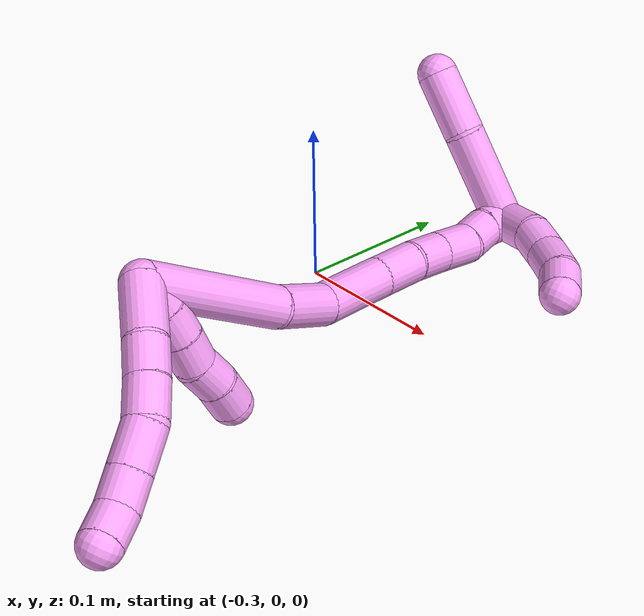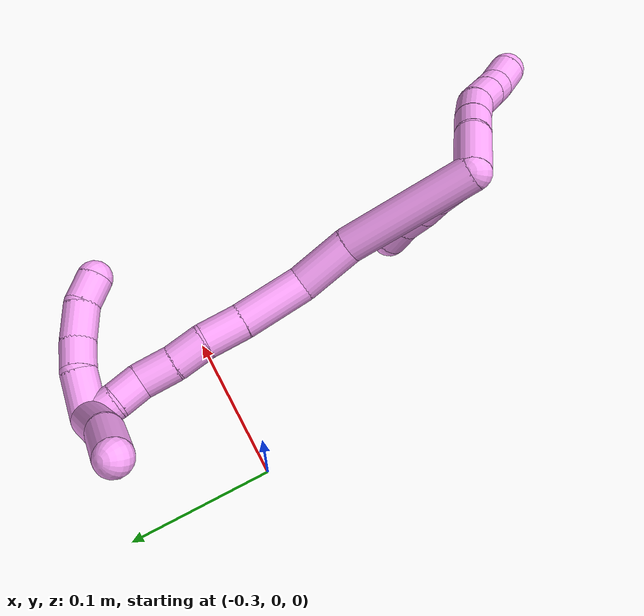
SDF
<sdf version="1.7">
 <world name="default">
  <model name="4">
   <static>0</static>
   <link name="4">
    <collision name="collision-cylinder-e_1_2_8">
     <pose>-0.011294 -0.007604 0.012873 0.533528 -0.646955 -0.182724</pose>
     <geometry><cylinder><radius>0.0125</radius><length>0.037475</length></cylinder></geometry>
     <surface>
      <friction><ode><mu>1.16</mu><mu2>1.16</mu2><slip1>0</slip1><slip2>0</slip2></ode></friction>
      <contact><ode><kp>1e+06</kp><kd>1</kd><max_vel>0</max_vel><min_depth>0.001</min_depth></ode></contact>
     </surface>
    </collision>
    <visual name="visual-cylinder-e_1_2_8">
     <pose>-0.011294 -0.007604 0.012873 0.533528 -0.646955 -0.182724</pose>
     <geometry><cylinder><radius>0.0125</radius><length>0.037475</length></cylinder></geometry>
     <material><ambient>1 0.65098 0.996078 1</ambient></material>
    </visual>
    <collision name="collision-cylinder-e_2_8_9">
     <pose>-0.028753 -0.01819 0.034156 0.340768 -0.604575 -0.107204</pose>
     <geometry><cylinder><radius>0.0125</radius><length>0.02169</length></cylinder></geometry>
     <surface>
      <friction><ode><mu>1.16</mu><mu2>1.16</mu2><slip1>0</slip1><slip2>0</slip2></ode></friction>
      <contact><ode><kp>1e+06</kp><kd>1</kd><max_vel>0</max_vel><min_depth>0.001</min_depth></ode></contact>
     </surface>
    </collision>
    <visual name="visual-cylinder-e_2_8_9">
     <pose>-0.028753 -0.01819 0.034156 0.340768 -0.604575 -0.107204</pose>
     <geometry><cylinder><radius>0.0125</radius><length>0.02169</length></cylinder></geometry>
     <material><ambient>1 0.65098 0.996078 1</ambient></material>
    </visual>
    <collision name="collision-cylinder-e_3_9_10">
     <pose>-0.04091 -0.024404 0.052118 0.326267 -0.536186 -0.09037</pose>
     <geometry><cylinder><radius>0.0125</radius><length>0.023463</length></cylinder></geometry>
     <surface>
      <friction><ode><mu>1.16</mu><mu2>1.16</mu2><slip1>0</slip1><slip2>0</slip2></ode></friction>
      <contact><ode><kp>1e+06</kp><kd>1</kd><max_vel>0</max_vel><min_depth>0.001</min_depth></ode></contact>
     </surface>
    </collision>
    <visual name="visual-cylinder-e_3_9_10">
     <pose>-0.04091 -0.024404 0.052118 0.326267 -0.536186 -0.09037</pose>
     <geometry><cylinder><radius>0.0125</radius><length>0.023463</length></cylinder></geometry>
     <material><ambient>1 0.65098 0.996078 1</ambient></material>
    </visual>
    <collision name="collision-cylinder-e_4_10_11">
     <pose>-0.050103 -0.031087 0.073909 0.274849 -0.246522 -0.034263</pose>
     <geometry><cylinder><radius>0.0125</radius><length>0.026221</length></cylinder></geometry>
     <surface>
      <friction><ode><mu>1.16</mu><mu2>1.16</mu2><slip1>0</slip1><slip2>0</slip2></ode></friction>
      <contact><ode><kp>1e+06</kp><kd>1</kd><max_vel>0</max_vel><min_depth>0.001</min_depth></ode></contact>
     </surface>
    </collision>
    <visual name="visual-cylinder-e_4_10_11">
     <pose>-0.050103 -0.031087 0.073909 0.274849 -0.246522 -0.034263</pose>
     <geometry><cylinder><radius>0.0125</radius><length>0.026221</length></cylinder></geometry>
     <material><ambient>1 0.65098 0.996078 1</ambient></material>
    </visual>
    <collision name="collision-cylinder-e_5_11_12">
     <pose>-0.05581 -0.037244 0.095742 0.274896 -0.246418 -0.034255</pose>
     <geometry><cylinder><radius>0.0125</radius><length>0.020563</length></cylinder></geometry>
     <surface>
      <friction><ode><mu>1.16</mu><mu2>1.16</mu2><slip1>0</slip1><slip2>0</slip2></ode></friction>
      <contact><ode><kp>1e+06</kp><kd>1</kd><max_vel>0</max_vel><min_depth>0.001</min_depth></ode></contact>
     </surface>
    </collision>
    <visual name="visual-cylinder-e_5_11_12">
     <pose>-0.05581 -0.037244 0.095742 0.274896 -0.246418 -0.034255</pose>
     <geometry><cylinder><radius>0.0125</radius><length>0.020563</length></cylinder></geometry>
     <material><ambient>1 0.65098 0.996078 1</ambient></material>
    </visual>
    <collision name="collision-cylinder-e_6_12_6">
     <pose>-0.060555 -0.045869 0.113459 0.629794 -0.218996 -0.071591</pose>
     <geometry><cylinder><radius>0.0125</radius><length>0.020588</length></cylinder></geometry>
     <surface>
      <friction><ode><mu>1.16</mu><mu2>1.16</mu2><slip1>0</slip1><slip2>0</slip2></ode></friction>
      <contact><ode><kp>1e+06</kp><kd>1</kd><max_vel>0</max_vel><min_depth>0.001</min_depth></ode></contact>
     </surface>
    </collision>
    <visual name="visual-cylinder-e_6_12_6">
     <pose>-0.060555 -0.045869 0.113459 0.629794 -0.218996 -0.071591</pose>
     <geometry><cylinder><radius>0.0125</radius><length>0.020588</length></cylinder></geometry>
     <material><ambient>1 0.65098 0.996078 1</ambient></material>
    </visual>
    <collision name="collision-cylinder-e_1_2_13">
     <pose>-0.005333 0.007639 0.003633 -1.12685 -0.562517 0.361064</pose>
     <geometry><cylinder><radius>0.0125</radius><length>0.02</length></cylinder></geometry>
     <surface>
      <friction><ode><mu>1.16</mu><mu2>1.16</mu2><slip1>0</slip1><slip2>0</slip2></ode></friction>
      <contact><ode><kp>1e+06</kp><kd>1</kd><max_vel>0</max_vel><min_depth>0.001</min_depth></ode></contact>
     </surface>
    </collision>
    <visual name="visual-cylinder-e_1_2_13">
     <pose>-0.005333 0.007639 0.003633 -1.12685 -0.562517 0.361064</pose>
     <geometry><cylinder><radius>0.0125</radius><length>0.02</length></cylinder></geometry>
     <material><ambient>1 0.65098 0.996078 1</ambient></material>
    </visual>
    <collision name="collision-cylinder-e_2_13_14">
     <pose>-0.015463 0.022686 0.01197 -1.00504 -0.500272 0.278997</pose>
     <geometry><cylinder><radius>0.0125</radius><length>0.02</length></cylinder></geometry>
     <surface>
      <friction><ode><mu>1.16</mu><mu2>1.16</mu2><slip1>0</slip1><slip2>0</slip2></ode></friction>
      <contact><ode><kp>1e+06</kp><kd>1</kd><max_vel>0</max_vel><min_depth>0.001</min_depth></ode></contact>
     </surface>
    </collision>
    <visual name="visual-cylinder-e_2_13_14">
     <pose>-0.015463 0.022686 0.01197 -1.00504 -0.500272 0.278997</pose>
     <geometry><cylinder><radius>0.0125</radius><length>0.02</length></cylinder></geometry>
     <material><ambient>1 0.65098 0.996078 1</ambient></material>
    </visual>
    <collision name="collision-cylinder-e_3_14_15">
     <pose>-0.024437 0.037744 0.021573 -1.00125 -0.430996 0.238389</pose>
     <geometry><cylinder><radius>0.0125</radius><length>0.02</length></cylinder></geometry>
     <surface>
      <friction><ode><mu>1.16</mu><mu2>1.16</mu2><slip1>0</slip1><slip2>0</slip2></ode></friction>
      <contact><ode><kp>1e+06</kp><kd>1</kd><max_vel>0</max_vel><min_depth>0.001</min_depth></ode></contact>
     </surface>
    </collision>
    <visual name="visual-cylinder-e_3_14_15">
     <pose>-0.024437 0.037744 0.021573 -1.00125 -0.430996 0.238389</pose>
     <geometry><cylinder><radius>0.0125</radius><length>0.02</length></cylinder></geometry>
     <material><ambient>1 0.65098 0.996078 1</ambient></material>
    </visual>
    <collision name="collision-cylinder-e_4_15_16">
     <pose>-0.033467 0.053803 0.028875 -1.29245 -0.506588 0.385635</pose>
     <geometry><cylinder><radius>0.0125</radius><length>0.02</length></cylinder></geometry>
     <surface>
      <friction><ode><mu>1.16</mu><mu2>1.16</mu2><slip1>0</slip1><slip2>0</slip2></ode></friction>
      <contact><ode><kp>1e+06</kp><kd>1</kd><max_vel>0</max_vel><min_depth>0.001</min_depth></ode></contact>
     </surface>
    </collision>
    <visual name="visual-cylinder-e_4_15_16">
     <pose>-0.033467 0.053803 0.028875 -1.29245 -0.506588 0.385635</pose>
     <geometry><cylinder><radius>0.0125</radius><length>0.02</length></cylinder></geometry>
     <material><ambient>1 0.65098 0.996078 1</ambient></material>
    </visual>
    <collision name="collision-cylinder-e_5_16_5">
     <pose>-0.041873 0.070882 0.034766 -1.18829 -0.363281 0.246896</pose>
     <geometry><cylinder><radius>0.0125</radius><length>0.02</length></cylinder></geometry>
     <surface>
      <friction><ode><mu>1.16</mu><mu2>1.16</mu2><slip1>0</slip1><slip2>0</slip2></ode></friction>
      <contact><ode><kp>1e+06</kp><kd>1</kd><max_vel>0</max_vel><min_depth>0.001</min_depth></ode></contact>
     </surface>
    </collision>
    <visual name="visual-cylinder-e_5_16_5">
     <pose>-0.041873 0.070882 0.034766 -1.18829 -0.363281 0.246896</pose>
     <geometry><cylinder><radius>0.0125</radius><length>0.02</length></cylinder></geometry>
     <material><ambient>1 0.65098 0.996078 1</ambient></material>
    </visual>
    <collision name="collision-cylinder-e_1_2_17">
     <pose>-0.022107 0.040545 -0.010052 -1.81381 -0.48676 0.61464</pose>
     <geometry><cylinder><radius>0.0125</radius><length>0.094523</length></cylinder></geometry>
     <surface>
      <friction><ode><mu>1.16</mu><mu2>1.16</mu2><slip1>0</slip1><slip2>0</slip2></ode></friction>
      <contact><ode><kp>1e+06</kp><kd>1</kd><max_vel>0</max_vel><min_depth>0.001</min_depth></ode></contact>
     </surface>
    </collision>
    <visual name="visual-cylinder-e_1_2_17">
     <pose>-0.022107 0.040545 -0.010052 -1.81381 -0.48676 0.61464</pose>
     <geometry><cylinder><radius>0.0125</radius><length>0.094523</length></cylinder></geometry>
     <material><ambient>1 0.65098 0.996078 1</ambient></material>
    </visual>
    <collision name="collision-cylinder-e_2_17_18">
     <pose>-0.049775 0.099453 -0.026644 -1.91298 -0.277847 0.391393</pose>
     <geometry><cylinder><radius>0.0125</radius><length>0.040541</length></cylinder></geometry>
     <surface>
      <friction><ode><mu>1.16</mu><mu2>1.16</mu2><slip1>0</slip1><slip2>0</slip2></ode></friction>
      <contact><ode><kp>1e+06</kp><kd>1</kd><max_vel>0</max_vel><min_depth>0.001</min_depth></ode></contact>
     </surface>
    </collision>
    <visual name="visual-cylinder-e_2_17_18">
     <pose>-0.049775 0.099453 -0.026644 -1.91298 -0.277847 0.391393</pose>
     <geometry><cylinder><radius>0.0125</radius><length>0.040541</length></cylinder></geometry>
     <material><ambient>1 0.65098 0.996078 1</ambient></material>
    </visual>
    <collision name="collision-cylinder-e_3_18_19">
     <pose>-0.061369 0.135413 -0.047771 -2.26293 -0.258128 0.53889</pose>
     <geometry><cylinder><radius>0.0125</radius><length>0.04728</length></cylinder></geometry>
     <surface>
      <friction><ode><mu>1.16</mu><mu2>1.16</mu2><slip1>0</slip1><slip2>0</slip2></ode></friction>
      <contact><ode><kp>1e+06</kp><kd>1</kd><max_vel>0</max_vel><min_depth>0.001</min_depth></ode></contact>
     </surface>
    </collision>
    <visual name="visual-cylinder-e_3_18_19">
     <pose>-0.061369 0.135413 -0.047771 -2.26293 -0.258128 0.53889</pose>
     <geometry><cylinder><radius>0.0125</radius><length>0.04728</length></cylinder></geometry>
     <material><ambient>1 0.65098 0.996078 1</ambient></material>
    </visual>
    <collision name="collision-cylinder-e_4_19_20">
     <pose>-0.071716 0.162721 -0.071412 -2.32118 -0.31402 0.698254</pose>
     <geometry><cylinder><radius>0.0125</radius><length>0.027918</length></cylinder></geometry>
     <surface>
      <friction><ode><mu>1.16</mu><mu2>1.16</mu2><slip1>0</slip1><slip2>0</slip2></ode></friction>
      <contact><ode><kp>1e+06</kp><kd>1</kd><max_vel>0</max_vel><min_depth>0.001</min_depth></ode></contact>
     </surface>
    </collision>
    <visual name="visual-cylinder-e_4_19_20">
     <pose>-0.071716 0.162721 -0.071412 -2.32118 -0.31402 0.698254</pose>
     <geometry><cylinder><radius>0.0125</radius><length>0.027918</length></cylinder></geometry>
     <material><ambient>1 0.65098 0.996078 1</ambient></material>
    </visual>
    <collision name="collision-cylinder-e_5_20_21">
     <pose>-0.079004 0.182296 -0.086875 -2.14702 -0.247859 0.451183</pose>
     <geometry><cylinder><radius>0.0125</radius><length>0.024269</length></cylinder></geometry>
     <surface>
      <friction><ode><mu>1.16</mu><mu2>1.16</mu2><slip1>0</slip1><slip2>0</slip2></ode></friction>
      <contact><ode><kp>1e+06</kp><kd>1</kd><max_vel>0</max_vel><min_depth>0.001</min_depth></ode></contact>
     </surface>
    </collision>
    <visual name="visual-cylinder-e_5_20_21">
     <pose>-0.079004 0.182296 -0.086875 -2.14702 -0.247859 0.451183</pose>
     <geometry><cylinder><radius>0.0125</radius><length>0.024269</length></cylinder></geometry>
     <material><ambient>1 0.65098 0.996078 1</ambient></material>
    </visual>
    <collision name="collision-cylinder-e_6_21_22">
     <pose>-0.086434 0.201578 -0.100432 -2.21998 -0.360201 0.703036</pose>
     <geometry><cylinder><radius>0.0125</radius><length>0.025267</length></cylinder></geometry>
     <surface>
      <friction><ode><mu>1.16</mu><mu2>1.16</mu2><slip1>0</slip1><slip2>0</slip2></ode></friction>
      <contact><ode><kp>1e+06</kp><kd>1</kd><max_vel>0</max_vel><min_depth>0.001</min_depth></ode></contact>
     </surface>
    </collision>
    <visual name="visual-cylinder-e_6_21_22">
     <pose>-0.086434 0.201578 -0.100432 -2.21998 -0.360201 0.703036</pose>
     <geometry><cylinder><radius>0.0125</radius><length>0.025267</length></cylinder></geometry>
     <material><ambient>1 0.65098 0.996078 1</ambient></material>
    </visual>
    <collision name="collision-cylinder-e_7_22_23">
     <pose>-0.091745 0.218197 -0.114565 -2.34107 -0.085359 0.201187</pose>
     <geometry><cylinder><radius>0.0125</radius><length>0.02014</length></cylinder></geometry>
     <surface>
      <friction><ode><mu>1.16</mu><mu2>1.16</mu2><slip1>0</slip1><slip2>0</slip2></ode></friction>
      <contact><ode><kp>1e+06</kp><kd>1</kd><max_vel>0</max_vel><min_depth>0.001</min_depth></ode></contact>
     </surface>
    </collision>
    <visual name="visual-cylinder-e_7_22_23">
     <pose>-0.091745 0.218197 -0.114565 -2.34107 -0.085359 0.201187</pose>
     <geometry><cylinder><radius>0.0125</radius><length>0.02014</length></cylinder></geometry>
     <material><ambient>1 0.65098 0.996078 1</ambient></material>
    </visual>
    <collision name="collision-cylinder-e_8_23_1">
     <pose>-0.095061 0.233112 -0.127474 -2.22559 -0.247449 0.494227</pose>
     <geometry><cylinder><radius>0.0125</radius><length>0.020061</length></cylinder></geometry>
     <surface>
      <friction><ode><mu>1.16</mu><mu2>1.16</mu2><slip1>0</slip1><slip2>0</slip2></ode></friction>
      <contact><ode><kp>1e+06</kp><kd>1</kd><max_vel>0</max_vel><min_depth>0.001</min_depth></ode></contact>
     </surface>
    </collision>
    <visual name="visual-cylinder-e_8_23_1">
     <pose>-0.095061 0.233112 -0.127474 -2.22559 -0.247449 0.494227</pose>
     <geometry><cylinder><radius>0.0125</radius><length>0.020061</length></cylinder></geometry>
     <material><ambient>1 0.65098 0.996078 1</ambient></material>
    </visual>
    <collision name="collision-cylinder-e_1_1_24">
     <pose>-0.077979 0.226769 -0.151397 2.47858 0.707691 1.64134</pose>
     <geometry><cylinder><radius>0.0125</radius><length>0.060111</length></cylinder></geometry>
     <surface>
      <friction><ode><mu>1.16</mu><mu2>1.16</mu2><slip1>0</slip1><slip2>0</slip2></ode></friction>
      <contact><ode><kp>1e+06</kp><kd>1</kd><max_vel>0</max_vel><min_depth>0.001</min_depth></ode></contact>
     </surface>
    </collision>
    <visual name="visual-cylinder-e_1_1_24">
     <pose>-0.077979 0.226769 -0.151397 2.47858 0.707691 1.64134</pose>
     <geometry><cylinder><radius>0.0125</radius><length>0.060111</length></cylinder></geometry>
     <material><ambient>1 0.65098 0.996078 1</ambient></material>
    </visual>
    <collision name="collision-cylinder-e_2_24_4">
     <pose>-0.044036 0.207324 -0.182095 2.74034 0.807007 2.25252</pose>
     <geometry><cylinder><radius>0.0125</radius><length>0.039889</length></cylinder></geometry>
     <surface>
      <friction><ode><mu>1.16</mu><mu2>1.16</mu2><slip1>0</slip1><slip2>0</slip2></ode></friction>
      <contact><ode><kp>1e+06</kp><kd>1</kd><max_vel>0</max_vel><min_depth>0.001</min_depth></ode></contact>
     </surface>
    </collision>
    <visual name="visual-cylinder-e_2_24_4">
     <pose>-0.044036 0.207324 -0.182095 2.74034 0.807007 2.25252</pose>
     <geometry><cylinder><radius>0.0125</radius><length>0.039889</length></cylinder></geometry>
     <material><ambient>1 0.65098 0.996078 1</ambient></material>
    </visual>
    <collision name="collision-cylinder-e_1_1_25">
     <pose>-0.110289 0.23133 -0.131827 1.40695 -0.924985 -0.800177</pose>
     <geometry><cylinder><radius>0.0125</radius><length>0.031984</length></cylinder></geometry>
     <surface>
      <friction><ode><mu>1.16</mu><mu2>1.16</mu2><slip1>0</slip1><slip2>0</slip2></ode></friction>
      <contact><ode><kp>1e+06</kp><kd>1</kd><max_vel>0</max_vel><min_depth>0.001</min_depth></ode></contact>
     </surface>
    </collision>
    <visual name="visual-cylinder-e_1_1_25">
     <pose>-0.110289 0.23133 -0.131827 1.40695 -0.924985 -0.800177</pose>
     <geometry><cylinder><radius>0.0125</radius><length>0.031984</length></cylinder></geometry>
     <material><ambient>1 0.65098 0.996078 1</ambient></material>
    </visual>
    <collision name="collision-cylinder-e_2_25_26">
     <pose>-0.131096 0.216511 -0.126004 0.89668 -0.867492 -0.438412</pose>
     <geometry><cylinder><radius>0.0125</radius><length>0.021071</length></cylinder></geometry>
     <surface>
      <friction><ode><mu>1.16</mu><mu2>1.16</mu2><slip1>0</slip1><slip2>0</slip2></ode></friction>
      <contact><ode><kp>1e+06</kp><kd>1</kd><max_vel>0</max_vel><min_depth>0.001</min_depth></ode></contact>
     </surface>
    </collision>
    <visual name="visual-cylinder-e_2_25_26">
     <pose>-0.131096 0.216511 -0.126004 0.89668 -0.867492 -0.438412</pose>
     <geometry><cylinder><radius>0.0125</radius><length>0.021071</length></cylinder></geometry>
     <material><ambient>1 0.65098 0.996078 1</ambient></material>
    </visual>
    <collision name="collision-cylinder-e_3_26_27">
     <pose>-0.147345 0.202183 -0.117019 1.08696 -0.679298 -0.420644</pose>
     <geometry><cylinder><radius>0.0125</radius><length>0.026149</length></cylinder></geometry>
     <surface>
      <friction><ode><mu>1.16</mu><mu2>1.16</mu2><slip1>0</slip1><slip2>0</slip2></ode></friction>
      <contact><ode><kp>1e+06</kp><kd>1</kd><max_vel>0</max_vel><min_depth>0.001</min_depth></ode></contact>
     </surface>
    </collision>
    <visual name="visual-cylinder-e_3_26_27">
     <pose>-0.147345 0.202183 -0.117019 1.08696 -0.679298 -0.420644</pose>
     <geometry><cylinder><radius>0.0125</radius><length>0.026149</length></cylinder></geometry>
     <material><ambient>1 0.65098 0.996078 1</ambient></material>
    </visual>
    <collision name="collision-cylinder-e_4_27_3">
     <pose>-0.159738 0.185885 -0.106166 0.872538 -0.413578 -0.194999</pose>
     <geometry><cylinder><radius>0.0125</radius><length>0.020796</length></cylinder></geometry>
     <surface>
      <friction><ode><mu>1.16</mu><mu2>1.16</mu2><slip1>0</slip1><slip2>0</slip2></ode></friction>
      <contact><ode><kp>1e+06</kp><kd>1</kd><max_vel>0</max_vel><min_depth>0.001</min_depth></ode></contact>
     </surface>
    </collision>
    <visual name="visual-cylinder-e_4_27_3">
     <pose>-0.159738 0.185885 -0.106166 0.872538 -0.413578 -0.194999</pose>
     <geometry><cylinder><radius>0.0125</radius><length>0.020796</length></cylinder></geometry>
     <material><ambient>1 0.65098 0.996078 1</ambient></material>
    </visual>
    <collision name="collision-sphere-3">
     <pose>-0.163917 0.178592 -0.100045 0 -0 0</pose>
     <geometry><sphere><radius>0.0125</radius></sphere></geometry>
     <surface>
      <friction><ode><mu>1.16</mu><mu2>1.16</mu2><slip1>0</slip1><slip2>0</slip2></ode></friction>
      <contact><ode><kp>1e+06</kp><kd>1</kd><max_vel>0</max_vel><min_depth>0.001</min_depth></ode></contact>
     </surface>
    </collision>
    <visual name="visual-sphere-3">
     <pose>-0.163917 0.178592 -0.100045 0 -0 0</pose>
     <geometry><sphere><radius>0.0125</radius></sphere></geometry>
     <material><ambient>1 0.65098 0.996078 1</ambient></material>
    </visual>
    <collision name="collision-sphere-27">
     <pose>-0.155559 0.193178 -0.112287 0 -0 0</pose>
     <geometry><sphere><radius>0.0125</radius></sphere></geometry>
     <surface>
      <friction><ode><mu>1.16</mu><mu2>1.16</mu2><slip1>0</slip1><slip2>0</slip2></ode></friction>
      <contact><ode><kp>1e+06</kp><kd>1</kd><max_vel>0</max_vel><min_depth>0.001</min_depth></ode></contact>
     </surface>
    </collision>
    <visual name="visual-sphere-27">
     <pose>-0.155559 0.193178 -0.112287 0 -0 0</pose>
     <geometry><sphere><radius>0.0125</radius></sphere></geometry>
     <material><ambient>1 0.65098 0.996078 1</ambient></material>
    </visual>
    <collision name="collision-sphere-26">
     <pose>-0.139131 0.211188 -0.121751 0 -0 0</pose>
     <geometry><sphere><radius>0.0125</radius></sphere></geometry>
     <surface>
      <friction><ode><mu>1.16</mu><mu2>1.16</mu2><slip1>0</slip1><slip2>0</slip2></ode></friction>
      <contact><ode><kp>1e+06</kp><kd>1</kd><max_vel>0</max_vel><min_depth>0.001</min_depth></ode></contact>
     </surface>
    </collision>
    <visual name="visual-sphere-26">
     <pose>-0.139131 0.211188 -0.121751 0 -0 0</pose>
     <geometry><sphere><radius>0.0125</radius></sphere></geometry>
     <material><ambient>1 0.65098 0.996078 1</ambient></material>
    </visual>
    <collision name="collision-sphere-25">
     <pose>-0.12306 0.221834 -0.130257 0 -0 0</pose>
     <geometry><sphere><radius>0.0125</radius></sphere></geometry>
     <surface>
      <friction><ode><mu>1.16</mu><mu2>1.16</mu2><slip1>0</slip1><slip2>0</slip2></ode></friction>
      <contact><ode><kp>1e+06</kp><kd>1</kd><max_vel>0</max_vel><min_depth>0.001</min_depth></ode></contact>
     </surface>
    </collision>
    <visual name="visual-sphere-25">
     <pose>-0.12306 0.221834 -0.130257 0 -0 0</pose>
     <geometry><sphere><radius>0.0125</radius></sphere></geometry>
     <material><ambient>1 0.65098 0.996078 1</ambient></material>
    </visual>
    <collision name="collision-sphere-4">
     <pose>-0.029632 0.201936 -0.194795 0 -0 0</pose>
     <geometry><sphere><radius>0.0125</radius></sphere></geometry>
     <surface>
      <friction><ode><mu>1.16</mu><mu2>1.16</mu2><slip1>0</slip1><slip2>0</slip2></ode></friction>
      <contact><ode><kp>1e+06</kp><kd>1</kd><max_vel>0</max_vel><min_depth>0.001</min_depth></ode></contact>
     </surface>
    </collision>
    <visual name="visual-sphere-4">
     <pose>-0.029632 0.201936 -0.194795 0 -0 0</pose>
     <geometry><sphere><radius>0.0125</radius></sphere></geometry>
     <material><ambient>1 0.65098 0.996078 1</ambient></material>
    </visual>
    <collision name="collision-sphere-24">
     <pose>-0.058441 0.212712 -0.169396 0 -0 0</pose>
     <geometry><sphere><radius>0.0125</radius></sphere></geometry>
     <surface>
      <friction><ode><mu>1.16</mu><mu2>1.16</mu2><slip1>0</slip1><slip2>0</slip2></ode></friction>
      <contact><ode><kp>1e+06</kp><kd>1</kd><max_vel>0</max_vel><min_depth>0.001</min_depth></ode></contact>
     </surface>
    </collision>
    <visual name="visual-sphere-24">
     <pose>-0.058441 0.212712 -0.169396 0 -0 0</pose>
     <geometry><sphere><radius>0.0125</radius></sphere></geometry>
     <material><ambient>1 0.65098 0.996078 1</ambient></material>
    </visual>
    <collision name="collision-sphere-1">
     <pose>-0.097518 0.240825 -0.133397 0 -0 0</pose>
     <geometry><sphere><radius>0.0125</radius></sphere></geometry>
     <surface>
      <friction><ode><mu>1.16</mu><mu2>1.16</mu2><slip1>0</slip1><slip2>0</slip2></ode></friction>
      <contact><ode><kp>1e+06</kp><kd>1</kd><max_vel>0</max_vel><min_depth>0.001</min_depth></ode></contact>
     </surface>
    </collision>
    <visual name="visual-sphere-1">
     <pose>-0.097518 0.240825 -0.133397 0 -0 0</pose>
     <geometry><sphere><radius>0.0125</radius></sphere></geometry>
     <material><ambient>1 0.65098 0.996078 1</ambient></material>
    </visual>
    <collision name="collision-sphere-23">
     <pose>-0.092604 0.225398 -0.121552 0 -0 0</pose>
     <geometry><sphere><radius>0.0125</radius></sphere></geometry>
     <surface>
      <friction><ode><mu>1.16</mu><mu2>1.16</mu2><slip1>0</slip1><slip2>0</slip2></ode></friction>
      <contact><ode><kp>1e+06</kp><kd>1</kd><max_vel>0</max_vel><min_depth>0.001</min_depth></ode></contact>
     </surface>
    </collision>
    <visual name="visual-sphere-23">
     <pose>-0.092604 0.225398 -0.121552 0 -0 0</pose>
     <geometry><sphere><radius>0.0125</radius></sphere></geometry>
     <material><ambient>1 0.65098 0.996078 1</ambient></material>
    </visual>
    <collision name="collision-sphere-22">
     <pose>-0.090887 0.210996 -0.107579 0 -0 0</pose>
     <geometry><sphere><radius>0.0125</radius></sphere></geometry>
     <surface>
      <friction><ode><mu>1.16</mu><mu2>1.16</mu2><slip1>0</slip1><slip2>0</slip2></ode></friction>
      <contact><ode><kp>1e+06</kp><kd>1</kd><max_vel>0</max_vel><min_depth>0.001</min_depth></ode></contact>
     </surface>
    </collision>
    <visual name="visual-sphere-22">
     <pose>-0.090887 0.210996 -0.107579 0 -0 0</pose>
     <geometry><sphere><radius>0.0125</radius></sphere></geometry>
     <material><ambient>1 0.65098 0.996078 1</ambient></material>
    </visual>
    <collision name="collision-sphere-21">
     <pose>-0.081981 0.19216 -0.093284 0 -0 0</pose>
     <geometry><sphere><radius>0.0125</radius></sphere></geometry>
     <surface>
      <friction><ode><mu>1.16</mu><mu2>1.16</mu2><slip1>0</slip1><slip2>0</slip2></ode></friction>
      <contact><ode><kp>1e+06</kp><kd>1</kd><max_vel>0</max_vel><min_depth>0.001</min_depth></ode></contact>
     </surface>
    </collision>
    <visual name="visual-sphere-21">
     <pose>-0.081981 0.19216 -0.093284 0 -0 0</pose>
     <geometry><sphere><radius>0.0125</radius></sphere></geometry>
     <material><ambient>1 0.65098 0.996078 1</ambient></material>
    </visual>
    <collision name="collision-sphere-12">
     <pose>-0.058318 -0.039951 0.105338 0 -0 0</pose>
     <geometry><sphere><radius>0.0125</radius></sphere></geometry>
     <surface>
      <friction><ode><mu>1.16</mu><mu2>1.16</mu2><slip1>0</slip1><slip2>0</slip2></ode></friction>
      <contact><ode><kp>1e+06</kp><kd>1</kd><max_vel>0</max_vel><min_depth>0.001</min_depth></ode></contact>
     </surface>
    </collision>
    <visual name="visual-sphere-12">
     <pose>-0.058318 -0.039951 0.105338 0 -0 0</pose>
     <geometry><sphere><radius>0.0125</radius></sphere></geometry>
     <material><ambient>1 0.65098 0.996078 1</ambient></material>
    </visual>
    <collision name="collision-sphere-11">
     <pose>-0.053302 -0.034538 0.086146 0 -0 0</pose>
     <geometry><sphere><radius>0.0125</radius></sphere></geometry>
     <surface>
      <friction><ode><mu>1.16</mu><mu2>1.16</mu2><slip1>0</slip1><slip2>0</slip2></ode></friction>
      <contact><ode><kp>1e+06</kp><kd>1</kd><max_vel>0</max_vel><min_depth>0.001</min_depth></ode></contact>
     </surface>
    </collision>
    <visual name="visual-sphere-11">
     <pose>-0.053302 -0.034538 0.086146 0 -0 0</pose>
     <geometry><sphere><radius>0.0125</radius></sphere></geometry>
     <material><ambient>1 0.65098 0.996078 1</ambient></material>
    </visual>
    <collision name="collision-sphere-10">
     <pose>-0.046903 -0.027636 0.061671 0 -0 0</pose>
     <geometry><sphere><radius>0.0125</radius></sphere></geometry>
     <surface>
      <friction><ode><mu>1.16</mu><mu2>1.16</mu2><slip1>0</slip1><slip2>0</slip2></ode></friction>
      <contact><ode><kp>1e+06</kp><kd>1</kd><max_vel>0</max_vel><min_depth>0.001</min_depth></ode></contact>
     </surface>
    </collision>
    <visual name="visual-sphere-10">
     <pose>-0.046903 -0.027636 0.061671 0 -0 0</pose>
     <geometry><sphere><radius>0.0125</radius></sphere></geometry>
     <material><ambient>1 0.65098 0.996078 1</ambient></material>
    </visual>
    <collision name="collision-sphere-9">
     <pose>-0.034917 -0.021172 0.042565 0 -0 0</pose>
     <geometry><sphere><radius>0.0125</radius></sphere></geometry>
     <surface>
      <friction><ode><mu>1.16</mu><mu2>1.16</mu2><slip1>0</slip1><slip2>0</slip2></ode></friction>
      <contact><ode><kp>1e+06</kp><kd>1</kd><max_vel>0</max_vel><min_depth>0.001</min_depth></ode></contact>
     </surface>
    </collision>
    <visual name="visual-sphere-9">
     <pose>-0.034917 -0.021172 0.042565 0 -0 0</pose>
     <geometry><sphere><radius>0.0125</radius></sphere></geometry>
     <material><ambient>1 0.65098 0.996078 1</ambient></material>
    </visual>
    <collision name="collision-sphere-2">
     <geometry><sphere><radius>0.0125</radius></sphere></geometry>
     <surface>
      <friction><ode><mu>1.16</mu><mu2>1.16</mu2><slip1>0</slip1><slip2>0</slip2></ode></friction>
      <contact><ode><kp>1e+06</kp><kd>1</kd><max_vel>0</max_vel><min_depth>0.001</min_depth></ode></contact>
     </surface>
    </collision>
    <visual name="visual-sphere-2">
     <geometry><sphere><radius>0.0125</radius></sphere></geometry>
     <material><ambient>1 0.65098 0.996078 1</ambient></material>
    </visual>
    <collision name="collision-sphere-19">
     <pose>-0.067404 0.15301 -0.062358 0 -0 0</pose>
     <geometry><sphere><radius>0.0125</radius></sphere></geometry>
     <surface>
      <friction><ode><mu>1.16</mu><mu2>1.16</mu2><slip1>0</slip1><slip2>0</slip2></ode></friction>
      <contact><ode><kp>1e+06</kp><kd>1</kd><max_vel>0</max_vel><min_depth>0.001</min_depth></ode></contact>
     </surface>
    </collision>
    <visual name="visual-sphere-19">
     <pose>-0.067404 0.15301 -0.062358 0 -0 0</pose>
     <geometry><sphere><radius>0.0125</radius></sphere></geometry>
     <material><ambient>1 0.65098 0.996078 1</ambient></material>
    </visual>
    <collision name="collision-sphere-8">
     <pose>-0.022589 -0.015208 0.025747 0 -0 0</pose>
     <geometry><sphere><radius>0.0125</radius></sphere></geometry>
     <surface>
      <friction><ode><mu>1.16</mu><mu2>1.16</mu2><slip1>0</slip1><slip2>0</slip2></ode></friction>
      <contact><ode><kp>1e+06</kp><kd>1</kd><max_vel>0</max_vel><min_depth>0.001</min_depth></ode></contact>
     </surface>
    </collision>
    <visual name="visual-sphere-8">
     <pose>-0.022589 -0.015208 0.025747 0 -0 0</pose>
     <geometry><sphere><radius>0.0125</radius></sphere></geometry>
     <material><ambient>1 0.65098 0.996078 1</ambient></material>
    </visual>
    <collision name="collision-sphere-6">
     <pose>-0.062791 -0.051787 0.121579 0 -0 0</pose>
     <geometry><sphere><radius>0.0125</radius></sphere></geometry>
     <surface>
      <friction><ode><mu>1.16</mu><mu2>1.16</mu2><slip1>0</slip1><slip2>0</slip2></ode></friction>
      <contact><ode><kp>1e+06</kp><kd>1</kd><max_vel>0</max_vel><min_depth>0.001</min_depth></ode></contact>
     </surface>
    </collision>
    <visual name="visual-sphere-6">
     <pose>-0.062791 -0.051787 0.121579 0 -0 0</pose>
     <geometry><sphere><radius>0.0125</radius></sphere></geometry>
     <material><ambient>1 0.65098 0.996078 1</ambient></material>
    </visual>
    <collision name="collision-sphere-13">
     <pose>-0.010666 0.015278 0.007266 0 -0 0</pose>
     <geometry><sphere><radius>0.0125</radius></sphere></geometry>
     <surface>
      <friction><ode><mu>1.16</mu><mu2>1.16</mu2><slip1>0</slip1><slip2>0</slip2></ode></friction>
      <contact><ode><kp>1e+06</kp><kd>1</kd><max_vel>0</max_vel><min_depth>0.001</min_depth></ode></contact>
     </surface>
    </collision>
    <visual name="visual-sphere-13">
     <pose>-0.010666 0.015278 0.007266 0 -0 0</pose>
     <geometry><sphere><radius>0.0125</radius></sphere></geometry>
     <material><ambient>1 0.65098 0.996078 1</ambient></material>
    </visual>
    <collision name="collision-sphere-14">
     <pose>-0.02026 0.030093 0.016674 0 -0 0</pose>
     <geometry><sphere><radius>0.0125</radius></sphere></geometry>
     <surface>
      <friction><ode><mu>1.16</mu><mu2>1.16</mu2><slip1>0</slip1><slip2>0</slip2></ode></friction>
      <contact><ode><kp>1e+06</kp><kd>1</kd><max_vel>0</max_vel><min_depth>0.001</min_depth></ode></contact>
     </surface>
    </collision>
    <visual name="visual-sphere-14">
     <pose>-0.02026 0.030093 0.016674 0 -0 0</pose>
     <geometry><sphere><radius>0.0125</radius></sphere></geometry>
     <material><ambient>1 0.65098 0.996078 1</ambient></material>
    </visual>
    <collision name="collision-sphere-15">
     <pose>-0.028615 0.045396 0.026472 0 -0 0</pose>
     <geometry><sphere><radius>0.0125</radius></sphere></geometry>
     <surface>
      <friction><ode><mu>1.16</mu><mu2>1.16</mu2><slip1>0</slip1><slip2>0</slip2></ode></friction>
      <contact><ode><kp>1e+06</kp><kd>1</kd><max_vel>0</max_vel><min_depth>0.001</min_depth></ode></contact>
     </surface>
    </collision>
    <visual name="visual-sphere-15">
     <pose>-0.028615 0.045396 0.026472 0 -0 0</pose>
     <geometry><sphere><radius>0.0125</radius></sphere></geometry>
     <material><ambient>1 0.65098 0.996078 1</ambient></material>
    </visual>
    <collision name="collision-sphere-16">
     <pose>-0.038319 0.062211 0.031278 0 -0 0</pose>
     <geometry><sphere><radius>0.0125</radius></sphere></geometry>
     <surface>
      <friction><ode><mu>1.16</mu><mu2>1.16</mu2><slip1>0</slip1><slip2>0</slip2></ode></friction>
      <contact><ode><kp>1e+06</kp><kd>1</kd><max_vel>0</max_vel><min_depth>0.001</min_depth></ode></contact>
     </surface>
    </collision>
    <visual name="visual-sphere-16">
     <pose>-0.038319 0.062211 0.031278 0 -0 0</pose>
     <geometry><sphere><radius>0.0125</radius></sphere></geometry>
     <material><ambient>1 0.65098 0.996078 1</ambient></material>
    </visual>
    <collision name="collision-sphere-5">
     <pose>-0.045426 0.079554 0.038255 0 -0 0</pose>
     <geometry><sphere><radius>0.0125</radius></sphere></geometry>
     <surface>
      <friction><ode><mu>1.16</mu><mu2>1.16</mu2><slip1>0</slip1><slip2>0</slip2></ode></friction>
      <contact><ode><kp>1e+06</kp><kd>1</kd><max_vel>0</max_vel><min_depth>0.001</min_depth></ode></contact>
     </surface>
    </collision>
    <visual name="visual-sphere-5">
     <pose>-0.045426 0.079554 0.038255 0 -0 0</pose>
     <geometry><sphere><radius>0.0125</radius></sphere></geometry>
     <material><ambient>1 0.65098 0.996078 1</ambient></material>
    </visual>
    <collision name="collision-sphere-17">
     <pose>-0.044215 0.08109 -0.020103 0 -0 0</pose>
     <geometry><sphere><radius>0.0125</radius></sphere></geometry>
     <surface>
      <friction><ode><mu>1.16</mu><mu2>1.16</mu2><slip1>0</slip1><slip2>0</slip2></ode></friction>
      <contact><ode><kp>1e+06</kp><kd>1</kd><max_vel>0</max_vel><min_depth>0.001</min_depth></ode></contact>
     </surface>
    </collision>
    <visual name="visual-sphere-17">
     <pose>-0.044215 0.08109 -0.020103 0 -0 0</pose>
     <geometry><sphere><radius>0.0125</radius></sphere></geometry>
     <material><ambient>1 0.65098 0.996078 1</ambient></material>
    </visual>
    <collision name="collision-sphere-18">
     <pose>-0.055335 0.117816 -0.033184 0 -0 0</pose>
     <geometry><sphere><radius>0.0125</radius></sphere></geometry>
     <surface>
      <friction><ode><mu>1.16</mu><mu2>1.16</mu2><slip1>0</slip1><slip2>0</slip2></ode></friction>
      <contact><ode><kp>1e+06</kp><kd>1</kd><max_vel>0</max_vel><min_depth>0.001</min_depth></ode></contact>
     </surface>
    </collision>
    <visual name="visual-sphere-18">
     <pose>-0.055335 0.117816 -0.033184 0 -0 0</pose>
     <geometry><sphere><radius>0.0125</radius></sphere></geometry>
     <material><ambient>1 0.65098 0.996078 1</ambient></material>
    </visual>
    <collision name="collision-sphere-20">
     <pose>-0.076027 0.172432 -0.080465 0 -0 0</pose>
     <geometry><sphere><radius>0.0125</radius></sphere></geometry>
     <surface>
      <friction><ode><mu>1.16</mu><mu2>1.16</mu2><slip1>0</slip1><slip2>0</slip2></ode></friction>
      <contact><ode><kp>1e+06</kp><kd>1</kd><max_vel>0</max_vel><min_depth>0.001</min_depth></ode></contact>
     </surface>
    </collision>
    <visual name="visual-sphere-20">
     <pose>-0.076027 0.172432 -0.080465 0 -0 0</pose>
     <geometry><sphere><radius>0.0125</radius></sphere></geometry>
     <material><ambient>1 0.65098 0.996078 1</ambient></material>
    </visual>
    <inertial>
     <pose>-0.05987 0.107321 -0.044789 0 -0 0</pose>
     <mass>0.75</mass>
     <inertia>
      <ixx>0.000149</ixx>
      <ixy>0</ixy>
      <ixz>0</ixz>
      <iyy>0.000114</iyy>
      <iyz>0</iyz>
      <izz>-2.8e-05</izz>
     </inertia>
    </inertial>
   </link>
   <pose>-0.210693 -0.19483 0.108092 -2.44683 -0.201919 -2.79469</pose>
  </model>
 </world>
</sdf>
